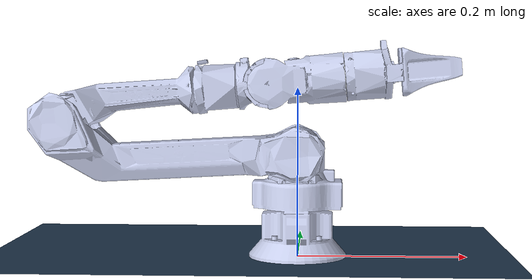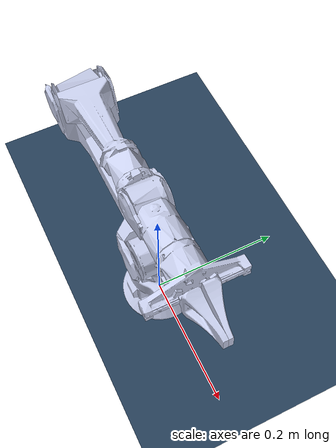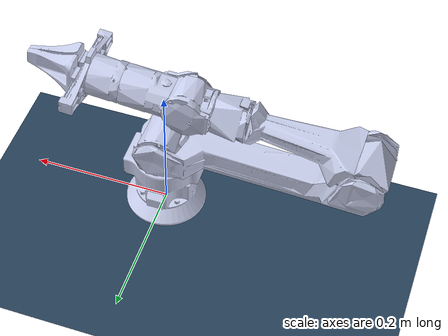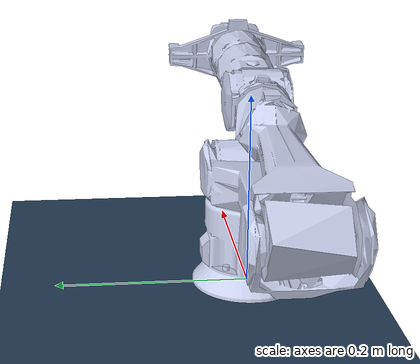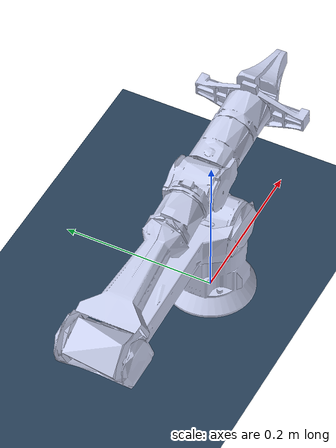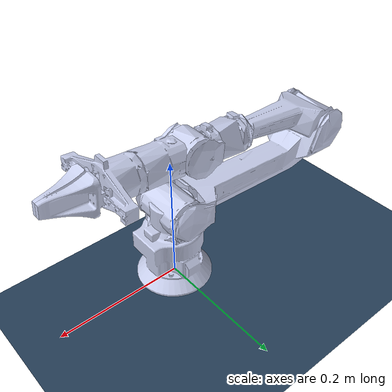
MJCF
<?xml version='1.0' encoding='utf-8'?>
<mujoco model="robot_with_actuators">
  <option timestep="0.002" gravity="0 0 -9.81" />
  <visual>
    <headlight ambient="0.5 0.5 0.5" />
  </visual>
  <asset>
    <texture name="grid" type="2d" builtin="checker" width="512" height="512" rgb1="0.1 0.2 0.3" rgb2="0.2 0.3 0.4" />
    <material name="grid" texture="grid" texrepeat="1 1" texuniform="true" reflectance="0.2" />
  </asset>
  <include file="piper_description_base.xml" />
  <worldbody>
    <light name="top" pos="0 0 2" dir="0 0 -1" directional="true" />
    <geom name="ground" type="plane" size="0 0 0.05" material="grid" condim="3" />
  </worldbody>
  <actuator>
    <motor name="act_joint1" joint="joint1" gear="1" ctrlrange="-100.0 100.0" forcerange="-100.0 100.0" />
    <motor name="act_joint2" joint="joint2" gear="1" ctrlrange="-100.0 100.0" forcerange="-100.0 100.0" />
    <motor name="act_joint3" joint="joint3" gear="1" ctrlrange="-100.0 100.0" forcerange="-100.0 100.0" />
    <motor name="act_joint4" joint="joint4" gear="1" ctrlrange="-100.0 100.0" forcerange="-100.0 100.0" />
    <motor name="act_joint5" joint="joint5" gear="1" ctrlrange="-100.0 100.0" forcerange="-100.0 100.0" />
    <motor name="act_joint6" joint="joint6" gear="1" ctrlrange="-100.0 100.0" forcerange="-100.0 100.0" />
    <motor name="act_joint7" joint="joint7" gear="1" ctrlrange="-10.0 10.0" forcerange="-10.0 10.0" />
    <motor name="act_joint8" joint="joint8" gear="1" ctrlrange="-10.0 10.0" forcerange="-10.0 10.0" />
  </actuator>
</mujoco>

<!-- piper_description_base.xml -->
<mujoco model="piper">
  <compiler angle="radian" meshdir="../meshes" />
  <asset>
    <mesh name="base_link" content_type="model/stl" file="base_link.STL" />
    <mesh name="link1" content_type="model/stl" file="link1.STL" />
    <mesh name="link2" content_type="model/stl" file="link2.STL" />
    <mesh name="link3" content_type="model/stl" file="link3.STL" />
    <mesh name="link4" content_type="model/stl" file="link4.STL" />
    <mesh name="link5" content_type="model/stl" file="link5.STL" />
    <mesh name="link6" content_type="model/stl" file="link6.STL" />
    <mesh name="gripper_base" content_type="model/stl" file="gripper_base.STL" />
    <mesh name="link7" content_type="model/stl" file="link7.STL" />
    <mesh name="link8" content_type="model/stl" file="link8.STL" />
  </asset>
  <worldbody>
    <geom type="mesh" rgba="0.792157 0.819608 0.933333 1" mesh="base_link" contype="0" conaffinity="0" density="0" group="1" />
    <body name="link1" pos="0 0 0.123">
      <inertial pos="0.00032 -0.00041 -0.00348" quat="0.737007 0.671914 -0.0484837 0.0547877" mass="0.71" diaginertia="0.0005012 0.00045752 0.00040836" />
      <joint name="joint1" pos="0 0 0" axis="0 0 1" range="-2.618 2.618" actuatorfrcrange="-100 100" />
      <geom type="mesh" rgba="0.792157 0.819608 0.933333 1" mesh="link1" contype="1" conaffinity="15" density="0" group="0" />
      <body name="link2" quat="0.0480084 -0.0480134 -0.705476 -0.705474">
        <inertial pos="0.21852 -0.00861 0.00126" quat="0.479919 0.532436 0.466857 0.517913" mass="1.16" diaginertia="0.0676841 0.0675582 0.00106833" />
        <joint name="joint2" pos="0 0 0" axis="0 0 1" range="0 3.14" actuatorfrcrange="-100 100" />
        <geom type="mesh" rgba="0.792157 0.819608 0.933333 1" mesh="link2" contype="1" conaffinity="15" density="0" group="0" />
        <body name="link3" pos="0.28503 0 0" quat="0.623996 0 0 -0.781427">
          <inertial pos="-0.01999 -0.14808 -0.00053" quat="0.70534 0.70619 0.0352022 0.0505251" mass="0.5" diaginertia="0.0136724 0.0136332 0.000267444" />
          <joint name="joint3" pos="0 0 0" axis="0 0 1" range="-2.967 0" actuatorfrcrange="-100 100" />
          <geom type="mesh" rgba="0.792157 0.819608 0.933333 1" mesh="link3" contype="1" conaffinity="15" density="0" group="0" />
          <body name="link4" pos="-0.021984 -0.25075 0" quat="0.707105 0.707108 0 0">
            <inertial pos="0.00013 -0.00076 -0.00394" quat="0.727848 0.0276487 -0.0387803 0.684082" mass="0.38" diaginertia="0.000189565 0.00017841 0.000145735" />
            <joint name="joint4" pos="0 0 0" axis="0 0 1" range="-1.745 1.745" actuatorfrcrange="-100 100" />
            <geom type="mesh" rgba="0.792157 0.819608 0.933333 1" mesh="link4" contype="1" conaffinity="15" density="0" group="0" />
            <body name="link5" quat="0.707105 -0.707108 0 0">
              <inertial pos="0.00018 -0.06104 -0.00227" quat="0.709375 0.704813 -0.00301298 0.00422225" mass="0.383" diaginertia="0.00172319 0.00171178 0.000179292" />
              <joint name="joint5" pos="0 0 0" axis="0 0 1" range="-1.22 1.22" actuatorfrcrange="-100 100" />
              <geom type="mesh" rgba="0.792157 0.819608 0.933333 1" mesh="link5" contype="1" conaffinity="15" density="0" group="0" />
              <body name="link6" pos="8.8259e-05 -0.091 0" quat="0.707105 0.707108 0 0">
                <inertial pos="-0.000181451 8.01893e-05 0.0323587" quat="0.999993 3.27167e-05 0.0013705 0.00337339" mass="0.457" diaginertia="0.00245185 0.00210207 0.000705927" />
                <joint name="joint6" pos="0 0 0" axis="0 0 1" range="-2.0944 2.0944" actuatorfrcrange="-100 100" />
                <geom type="mesh" rgba="0.898039 0.917647 0.929412 1" mesh="link6" contype="1" conaffinity="15" density="0" group="0" />
                <geom type="mesh" rgba="0.792157 0.819608 0.933333 1" mesh="gripper_base" contype="1" conaffinity="15" density="0" group="0" />
                <body name="link7" pos="0 0 0.1358" quat="0.707105 0.707108 0 0">
                  <inertial pos="0.000651232 -0.049193 0.00972259" quat="0.301719 0.664591 -0.635911 0.250804" mass="0.025" diaginertia="8.79953e-05 7.36823e-05 6.04424e-05" />
                  <joint name="joint7" pos="0 0 0" axis="0 0 1" type="slide" range="0 0.035" actuatorfrcrange="-10 10" />
                  <geom type="mesh" rgba="0.792157 0.819608 0.933333 1" mesh="link7" contype="1" conaffinity="15" density="0" group="0" />
                </body>
                <body name="link8" pos="0 0 0.1358" quat="-2.59734e-06 -2.59735e-06 -0.707108 -0.707105">
                  <inertial pos="0.000651232 -0.049193 0.00972259" quat="0.301719 0.664591 -0.635911 0.250804" mass="0.025" diaginertia="8.79953e-05 7.36823e-05 6.04424e-05" />
                  <joint name="joint8" pos="0 0 0" axis="0 0 -1" type="slide" range="-0.035 0" actuatorfrcrange="-10 10" />
                  <geom type="mesh" rgba="0.792157 0.819608 0.933333 1" mesh="link8" contype="1" conaffinity="15" density="0" group="0" />
                </body>
              </body>
            </body>
          </body>
        </body>
      </body>
    </body>
  </worldbody>
</mujoco>
